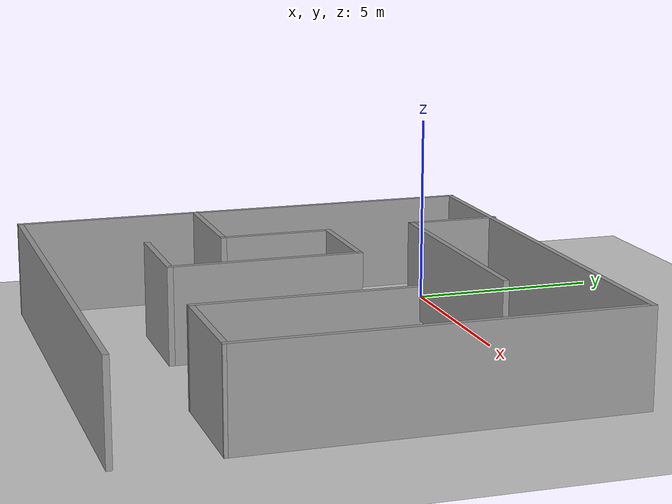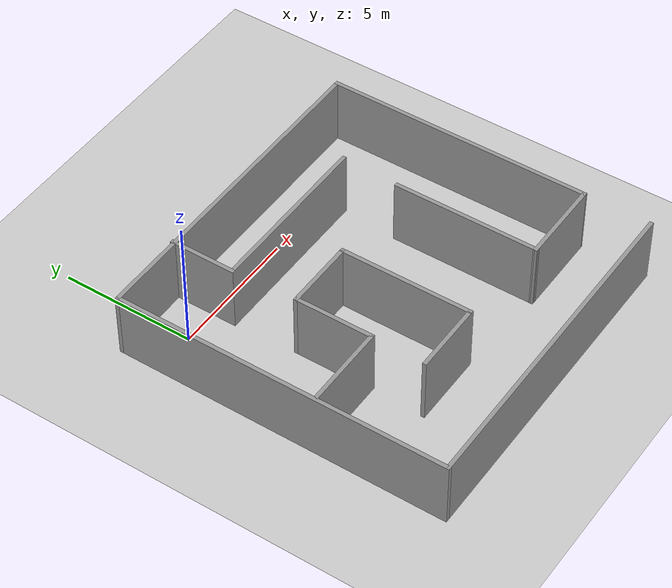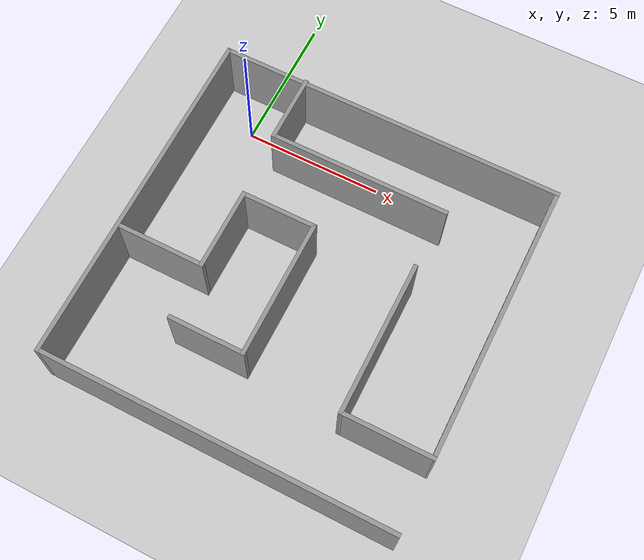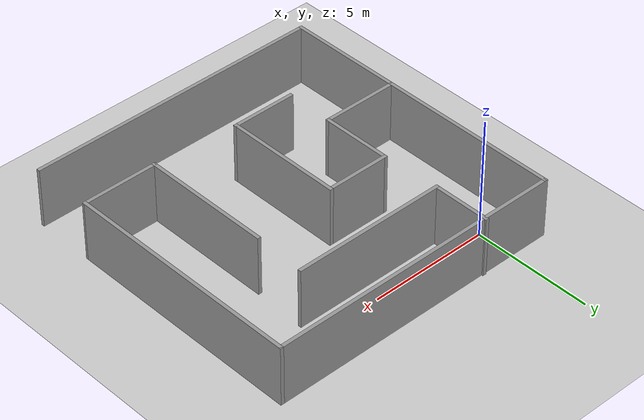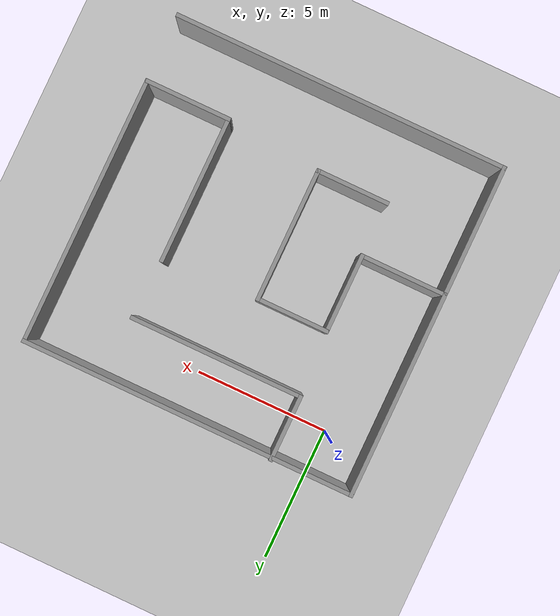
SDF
<sdf version="1.7">
 <world name="default">
  <light name="sun" type="directional">
   <pose>0 0 10 0 -0 0</pose>
   <diffuse>0.8 0.8 0.8 1</diffuse>
   <specular>0.2 0.2 0.2 1</specular>
   <attenuation>
    <range>1000</range>
    <constant>0.9</constant>
    <linear>0.01</linear>
    <quadratic>0.001</quadratic>
   </attenuation>
   <direction>-0.5 0.1 -0.9</direction>
   <spot><inner_angle>0</inner_angle><outer_angle>0</outer_angle><falloff>0</falloff></spot>
  </light>
  <model name="ground_plane">
   <static>1</static>
   <link name="link">
    <collision name="collision">
     <geometry><plane><normal>0 0 1</normal><size>100 100</size></plane></geometry>
     <surface>
      <contact><collide_bitmask>65535</collide_bitmask></contact>
      <friction><ode><mu>100</mu><mu2>50</mu2></ode></friction>
     </surface>
    </collision>
    <visual name="visual">
     <cast_shadows>0</cast_shadows>
     <geometry><plane><normal>0 0 1</normal><size>100 100</size></plane></geometry>
     <material>
      <script><uri>file://media/materials/scripts/gazebo.material</uri><name>Gazebo/Grey</name></script>
     </material>
    </visual>
   </link>
  </model>
  <gravity>0 0 -9.8</gravity>
  <magnetic_field>6e-06 2.3e-05 -4.2e-05</magnetic_field>
  <atmosphere type="adiabatic"/>
  <physics type="ode">
   <max_step_size>0.001</max_step_size>
   <real_time_factor>1</real_time_factor>
   <real_time_update_rate>1000</real_time_update_rate>
  </physics>
  <scene><ambient>0.4 0.4 0.4 1</ambient><background>0.7 0.7 0.7 1</background><shadows>1</shadows></scene>
  <audio><device>default</device></audio>
  <spherical_coordinates>
   <surface_model>EARTH_WGS84</surface_model>
   <latitude_deg>0</latitude_deg>
   <longitude_deg>0</longitude_deg>
   <elevation>0</elevation>
   <heading_deg>0</heading_deg>
  </spherical_coordinates>
  <model name="maze3">
   <pose>4.60174 -4.67917 0 0 -0 0</pose>
   <link name="Wall_1">
    <collision name="Wall_1_Collision">
     <geometry><box><size>10 0.15 2.5</size></box></geometry>
     <pose>0 0 1.25 0 -0 0</pose>
    </collision>
    <visual name="Wall_1_Visual">
     <pose>0 0 1.25 0 -0 0</pose>
     <geometry><box><size>10 0.15 2.5</size></box></geometry>
     <material>
      <script><uri>file://media/materials/scripts/gazebo.material</uri><name>Gazebo/Grey</name></script>
      <ambient>1 1 1 1</ambient>
     </material>
     <meta><layer>0</layer></meta>
    </visual>
    <pose>6.17498 1.22083 0 0 -0 -1.5708</pose>
   </link>
   <link name="Wall_11">
    <collision name="Wall_11_Collision">
     <geometry><box><size>3 0.15 2.5</size></box></geometry>
     <pose>0 0 1.25 0 -0 0</pose>
    </collision>
    <visual name="Wall_11_Visual">
     <pose>0 0 1.25 0 -0 0</pose>
     <geometry><box><size>3 0.15 2.5</size></box></geometry>
     <material>
      <script><uri>file://media/materials/scripts/gazebo.material</uri><name>Gazebo/Grey</name></script>
      <ambient>1 1 1 1</ambient>
     </material>
     <meta><layer>0</layer></meta>
    </visual>
    <pose>-3.04781 0.021054 0 0 -0 -1.5708</pose>
   </link>
   <link name="Wall_12">
    <collision name="Wall_12_Collision">
     <geometry><box><size>3.25 0.15 2.5</size></box></geometry>
     <pose>0 0 1.25 0 -0 0</pose>
    </collision>
    <visual name="Wall_12_Visual">
     <pose>0 0 1.25 0 -0 0</pose>
     <geometry><box><size>3.25 0.15 2.5</size></box></geometry>
     <material>
      <script><uri>file://media/materials/scripts/gazebo.material</uri><name>Gazebo/Grey</name></script>
      <ambient>1 1 1 1</ambient>
     </material>
     <meta><layer>0</layer></meta>
    </visual>
    <pose>-4.59781 -1.40395 0 0 -0 3.14159</pose>
   </link>
   <link name="Wall_14">
    <collision name="Wall_14_Collision">
     <geometry><box><size>2.75 0.15 2.5</size></box></geometry>
     <pose>0 0 1.25 0 -0 0</pose>
    </collision>
    <visual name="Wall_14_Visual">
     <pose>0 0 1.25 0 -0 0</pose>
     <geometry><box><size>2.75 0.15 2.5</size></box></geometry>
     <material>
      <script><uri>file://media/materials/scripts/gazebo.material</uri><name>Gazebo/Grey</name></script>
      <ambient>1 1 1 1</ambient>
     </material>
     <meta><layer>0</layer></meta>
    </visual>
    <pose>-1.74781 1.44605 0 0 -0 0</pose>
   </link>
   <link name="Wall_15">
    <collision name="Wall_15_Collision">
     <geometry><box><size>5 0.15 2.5</size></box></geometry>
     <pose>0 0 1.25 0 -0 0</pose>
    </collision>
    <visual name="Wall_15_Visual">
     <pose>0 0 1.25 0 -0 0</pose>
     <geometry><box><size>5 0.15 2.5</size></box></geometry>
     <material>
      <script><uri>file://media/materials/scripts/gazebo.material</uri><name>Gazebo/Grey</name></script>
      <ambient>1 1 1 1</ambient>
     </material>
     <meta><layer>0</layer></meta>
    </visual>
    <pose>-0.447813 -0.978946 0 0 -0 -1.5708</pose>
   </link>
   <link name="Wall_16">
    <collision name="Wall_16_Collision">
     <geometry><box><size>2.75 0.15 2.5</size></box></geometry>
     <pose>0 0 1.25 0 -0 0</pose>
    </collision>
    <visual name="Wall_16_Visual">
     <pose>0 0 1.25 0 -0 0</pose>
     <geometry><box><size>2.75 0.15 2.5</size></box></geometry>
     <material>
      <script><uri>file://media/materials/scripts/gazebo.material</uri><name>Gazebo/Grey</name></script>
      <ambient>1 1 1 1</ambient>
     </material>
     <meta><layer>0</layer></meta>
    </visual>
    <pose>-1.74781 -3.40395 0 0 -0 3.14159</pose>
   </link>
   <link name="Wall_18">
    <collision name="Wall_18_Collision">
     <geometry><box><size>5.5 0.15 2.5</size></box></geometry>
     <pose>0 0 1.25 0 -0 0</pose>
    </collision>
    <visual name="Wall_18_Visual">
     <pose>0 0 1.25 0 -0 0</pose>
     <geometry><box><size>5.5 0.15 2.5</size></box></geometry>
     <material>
      <script><uri>file://media/materials/scripts/gazebo.material</uri><name>Gazebo/Grey</name></script>
      <ambient>1 1 1 1</ambient>
     </material>
     <meta><layer>0</layer></meta>
    </visual>
    <pose>3.08648 -1.03107 0 0 -0 -1.5708</pose>
   </link>
   <link name="Wall_19">
    <collision name="Wall_19_Collision">
     <geometry><box><size>3.23849 0.15 2.5</size></box></geometry>
     <pose>0 0 1.25 0 -0 0</pose>
    </collision>
    <visual name="Wall_19_Visual">
     <pose>0 0 1.25 0 -0 0</pose>
     <geometry><box><size>3.23849 0.15 2.5</size></box></geometry>
     <material>
      <script><uri>file://media/materials/scripts/gazebo.material</uri><name>Gazebo/Grey</name></script>
      <ambient>1 1 1 1</ambient>
     </material>
     <meta><layer>0</layer></meta>
    </visual>
    <pose>4.63073 -3.70512 0 0 -0 0.000612</pose>
   </link>
   <link name="Wall_4">
    <collision name="Wall_4_Collision">
     <geometry><box><size>12.5 0.15 2.5</size></box></geometry>
     <pose>0 0 1.25 0 -0 0</pose>
    </collision>
    <visual name="Wall_4_Visual">
     <pose>0 0 1.25 0 -0 0</pose>
     <geometry><box><size>12.5 0.15 2.5</size></box></geometry>
     <material>
      <script><uri>file://media/materials/scripts/gazebo.material</uri><name>Gazebo/Grey</name></script>
      <ambient>1 1 1 1</ambient>
     </material>
     <meta><layer>0</layer></meta>
    </visual>
    <pose>-2.3e-05 6.14583 0 0 -0 3.14159</pose>
   </link>
   <link name="Wall_5">
    <collision name="Wall_5_Collision">
     <geometry><box><size>12.5 0.15 2.5</size></box></geometry>
     <pose>0 0 1.25 0 -0 0</pose>
    </collision>
    <visual name="Wall_5_Visual">
     <pose>0 0 1.25 0 -0 0</pose>
     <geometry><box><size>12.5 0.15 2.5</size></box></geometry>
     <material>
      <script><uri>file://media/materials/scripts/gazebo.material</uri><name>Gazebo/Grey</name></script>
      <ambient>1 1 1 1</ambient>
     </material>
     <meta><layer>0</layer></meta>
    </visual>
    <pose>-6.17502 -0.029174 0 0 -0 -1.5708</pose>
   </link>
   <link name="Wall_6">
    <collision name="Wall_6_Collision">
     <geometry><box><size>12.5 0.15 2.5</size></box></geometry>
     <pose>0 0 1.25 0 -0 0</pose>
    </collision>
    <visual name="Wall_6_Visual">
     <pose>0 0 1.25 0 -0 0</pose>
     <geometry><box><size>12.5 0.15 2.5</size></box></geometry>
     <material>
      <script><uri>file://media/materials/scripts/gazebo.material</uri><name>Gazebo/Grey</name></script>
      <ambient>1 1 1 1</ambient>
     </material>
     <meta><layer>0</layer></meta>
    </visual>
    <pose>-2.3e-05 -6.20417 0 0 -0 0</pose>
   </link>
   <link name="Wall_8">
    <collision name="Wall_8_Collision">
     <geometry><box><size>2.5 0.15 2.5</size></box></geometry>
     <pose>0 0 1.25 0 -0 0</pose>
    </collision>
    <visual name="Wall_8_Visual">
     <pose>0 0 1.25 0 -0 0</pose>
     <geometry><box><size>2.5 0.15 2.5</size></box></geometry>
     <material>
      <script><uri>file://media/materials/scripts/gazebo.material</uri><name>Gazebo/Grey</name></script>
      <ambient>1 1 1 1</ambient>
     </material>
     <meta><layer>0</layer></meta>
    </visual>
    <pose>-3.1885 5.02918 0 0 -0 -1.5708</pose>
   </link>
   <link name="Wall_9">
    <collision name="Wall_9_Collision">
     <geometry><box><size>6.5 0.15 2.5</size></box></geometry>
     <pose>0 0 1.25 0 -0 0</pose>
    </collision>
    <visual name="Wall_9_Visual">
     <pose>0 0 1.25 0 -0 0</pose>
     <geometry><box><size>6.5 0.15 2.5</size></box></geometry>
     <material>
      <script><uri>file://media/materials/scripts/gazebo.material</uri><name>Gazebo/Grey</name></script>
      <ambient>1 1 1 1</ambient>
     </material>
     <meta><layer>0</layer></meta>
    </visual>
    <pose>-0.013495 3.85417 0 0 -0 0</pose>
   </link>
   <static>1</static>
  </model>
 </world>
</sdf>
